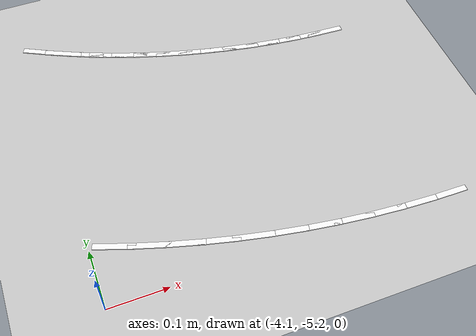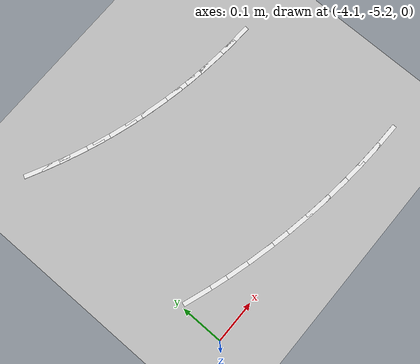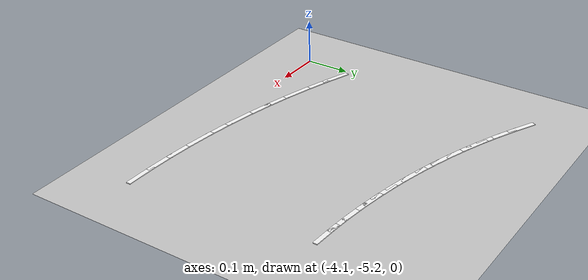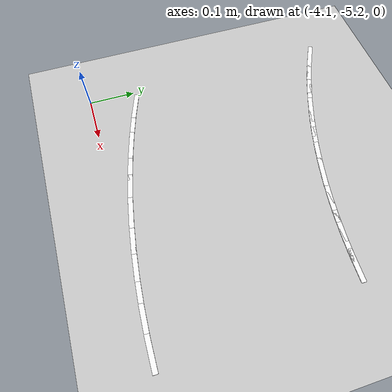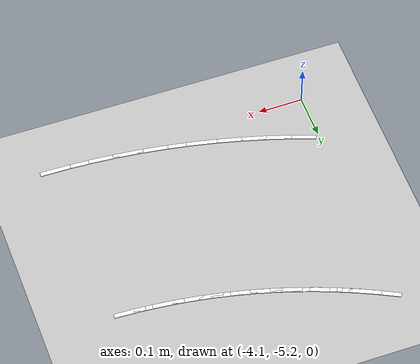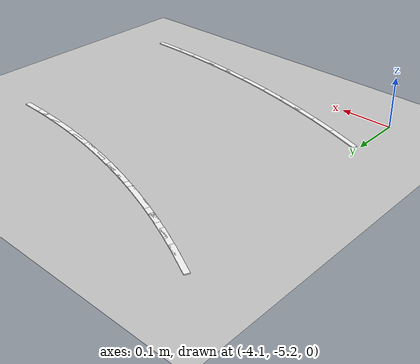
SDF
<sdf version="1.7">
 <world name="default">
  <model name="ground_plane">
   <static>1</static>
   <link name="link">
    <collision name="collision">
     <geometry><plane><normal>0 0 1</normal><size>100 100</size></plane></geometry>
     <surface>
      <contact><collide_bitmask>65535</collide_bitmask></contact>
      <friction><ode><mu>100</mu><mu2>50</mu2></ode></friction>
     </surface>
    </collision>
    <visual name="visual">
     <cast_shadows>0</cast_shadows>
     <geometry><plane><normal>0 0 1</normal><size>100 100</size></plane></geometry>
     <material>
      <script><uri>file://media/materials/scripts/gazebo.material</uri><name>Gazebo/Grey</name></script>
     </material>
    </visual>
   </link>
  </model>
  <model name="lane_line_left_384">
   <static>1</static>
   <link name="link">
    <pose>0 0 -0.004 0 -0 0</pose>
    <visual name="visual">
     <geometry><box><size>0.0681 0.01 0.01</size></box></geometry>
     <material><ambient>1 1 1 1</ambient><diffuse>1 1 1 1</diffuse></material>
    </visual>
    <collision name="collision"><geometry><box><size>0.0681 0.01 0.01</size></box></geometry></collision>
   </link>
   <pose>-4.08266 -4.6619 0 0 0 -0.464827</pose>
  </model>
  <model name="lane_line_left_385">
   <static>1</static>
   <link name="link">
    <pose>0 0 -0.004 0 -0 0</pose>
    <visual name="visual">
     <geometry><box><size>0.0681 0.01 0.01</size></box></geometry>
     <material><ambient>1 1 1 1</ambient><diffuse>1 1 1 1</diffuse></material>
    </visual>
    <collision name="collision"><geometry><box><size>0.0681 0.01 0.01</size></box></geometry></collision>
   </link>
   <pose>-4.04512 -4.67997 0 0 0 -0.43277</pose>
  </model>
  <model name="lane_line_left_386">
   <static>1</static>
   <link name="link">
    <pose>0 0 -0.004 0 -0 0</pose>
    <visual name="visual">
     <geometry><box><size>0.0681 0.01 0.01</size></box></geometry>
     <material><ambient>1 1 1 1</ambient><diffuse>1 1 1 1</diffuse></material>
    </visual>
    <collision name="collision"><geometry><box><size>0.0681 0.01 0.01</size></box></geometry></collision>
   </link>
   <pose>-4.00702 -4.69684 0 0 0 -0.400713</pose>
  </model>
  <model name="lane_line_left_387">
   <static>1</static>
   <link name="link">
    <pose>0 0 -0.004 0 -0 0</pose>
    <visual name="visual">
     <geometry><box><size>0.0681 0.01 0.01</size></box></geometry>
     <material><ambient>1 1 1 1</ambient><diffuse>1 1 1 1</diffuse></material>
    </visual>
    <collision name="collision"><geometry><box><size>0.0681 0.01 0.01</size></box></geometry></collision>
   </link>
   <pose>-3.9684 -4.71248 0 0 0 -0.368656</pose>
  </model>
  <model name="lane_line_left_388">
   <static>1</static>
   <link name="link">
    <pose>0 0 -0.004 0 -0 0</pose>
    <visual name="visual">
     <geometry><box><size>0.0681 0.01 0.01</size></box></geometry>
     <material><ambient>1 1 1 1</ambient><diffuse>1 1 1 1</diffuse></material>
    </visual>
    <collision name="collision"><geometry><box><size>0.0681 0.01 0.01</size></box></geometry></collision>
   </link>
   <pose>-3.9293 -4.72687 0 0 0 -0.336599</pose>
  </model>
  <model name="lane_line_right_388">
   <static>1</static>
   <link name="link">
    <pose>0 0 -0.004 0 -0 0</pose>
    <visual name="visual">
     <geometry><box><size>0.0681 0.01 0.01</size></box></geometry>
     <material><ambient>1 1 1 1</ambient><diffuse>1 1 1 1</diffuse></material>
    </visual>
    <collision name="collision"><geometry><box><size>0.0681 0.01 0.01</size></box></geometry></collision>
   </link>
   <pose>-4.06141 -5.10442 0 0 0 -0.336599</pose>
  </model>
  <model name="lane_line_left_389">
   <static>1</static>
   <link name="link">
    <pose>0 0 -0.004 0 -0 0</pose>
    <visual name="visual">
     <geometry><box><size>0.0681 0.01 0.01</size></box></geometry>
     <material><ambient>1 1 1 1</ambient><diffuse>1 1 1 1</diffuse></material>
    </visual>
    <collision name="collision"><geometry><box><size>0.0681 0.01 0.01</size></box></geometry></collision>
   </link>
   <pose>-3.88976 -4.74 0 0 0 -0.304542</pose>
  </model>
  <model name="lane_line_right_389">
   <static>1</static>
   <link name="link">
    <pose>0 0 -0.004 0 -0 0</pose>
    <visual name="visual">
     <geometry><box><size>0.0681 0.01 0.01</size></box></geometry>
     <material><ambient>1 1 1 1</ambient><diffuse>1 1 1 1</diffuse></material>
    </visual>
    <collision name="collision"><geometry><box><size>0.0681 0.01 0.01</size></box></geometry></collision>
   </link>
   <pose>-4.0097 -5.12159 0 0 0 -0.304542</pose>
  </model>
  <model name="lane_line_left_390">
   <static>1</static>
   <link name="link">
    <pose>0 0 -0.004 0 -0 0</pose>
    <visual name="visual">
     <geometry><box><size>0.0681 0.01 0.01</size></box></geometry>
     <material><ambient>1 1 1 1</ambient><diffuse>1 1 1 1</diffuse></material>
    </visual>
    <collision name="collision"><geometry><box><size>0.0681 0.01 0.01</size></box></geometry></collision>
   </link>
   <pose>-3.84981 -4.75185 0 0 0 -0.272485</pose>
  </model>
  <model name="lane_line_right_390">
   <static>1</static>
   <link name="link">
    <pose>0 0 -0.004 0 -0 0</pose>
    <visual name="visual">
     <geometry><box><size>0.0681 0.01 0.01</size></box></geometry>
     <material><ambient>1 1 1 1</ambient><diffuse>1 1 1 1</diffuse></material>
    </visual>
    <collision name="collision"><geometry><box><size>0.0681 0.01 0.01</size></box></geometry></collision>
   </link>
   <pose>-3.95746 -5.13709 0 0 0 -0.272485</pose>
  </model>
  <model name="lane_line_left_391">
   <static>1</static>
   <link name="link">
    <pose>0 0 -0.004 0 -0 0</pose>
    <visual name="visual">
     <geometry><box><size>0.0681 0.01 0.01</size></box></geometry>
     <material><ambient>1 1 1 1</ambient><diffuse>1 1 1 1</diffuse></material>
    </visual>
    <collision name="collision"><geometry><box><size>0.0681 0.01 0.01</size></box></geometry></collision>
   </link>
   <pose>-3.80951 -4.76242 0 0 0 -0.240428</pose>
  </model>
  <model name="lane_line_right_391">
   <static>1</static>
   <link name="link">
    <pose>0 0 -0.004 0 -0 0</pose>
    <visual name="visual">
     <geometry><box><size>0.0681 0.01 0.01</size></box></geometry>
     <material><ambient>1 1 1 1</ambient><diffuse>1 1 1 1</diffuse></material>
    </visual>
    <collision name="collision"><geometry><box><size>0.0681 0.01 0.01</size></box></geometry></collision>
   </link>
   <pose>-3.90476 -5.15091 0 0 0 -0.240428</pose>
  </model>
  <model name="lane_line_left_392">
   <static>1</static>
   <link name="link">
    <pose>0 0 -0.004 0 -0 0</pose>
    <visual name="visual">
     <geometry><box><size>0.0681 0.01 0.01</size></box></geometry>
     <material><ambient>1 1 1 1</ambient><diffuse>1 1 1 1</diffuse></material>
    </visual>
    <collision name="collision"><geometry><box><size>0.0681 0.01 0.01</size></box></geometry></collision>
   </link>
   <pose>-3.76889 -4.77169 0 0 0 -0.208371</pose>
  </model>
  <model name="lane_line_right_392">
   <static>1</static>
   <link name="link">
    <pose>0 0 -0.004 0 -0 0</pose>
    <visual name="visual">
     <geometry><box><size>0.0681 0.01 0.01</size></box></geometry>
     <material><ambient>1 1 1 1</ambient><diffuse>1 1 1 1</diffuse></material>
    </visual>
    <collision name="collision"><geometry><box><size>0.0681 0.01 0.01</size></box></geometry></collision>
   </link>
   <pose>-3.85163 -5.16304 0 0 0 -0.208371</pose>
  </model>
  <model name="lane_line_left_393">
   <static>1</static>
   <link name="link">
    <pose>0 0 -0.004 0 -0 0</pose>
    <visual name="visual">
     <geometry><box><size>0.0681 0.01 0.01</size></box></geometry>
     <material><ambient>1 1 1 1</ambient><diffuse>1 1 1 1</diffuse></material>
    </visual>
    <collision name="collision"><geometry><box><size>0.0681 0.01 0.01</size></box></geometry></collision>
   </link>
   <pose>-3.72799 -4.77966 0 0 0 -0.176314</pose>
  </model>
  <model name="lane_line_right_393">
   <static>1</static>
   <link name="link">
    <pose>0 0 -0.004 0 -0 0</pose>
    <visual name="visual">
     <geometry><box><size>0.0681 0.01 0.01</size></box></geometry>
     <material><ambient>1 1 1 1</ambient><diffuse>1 1 1 1</diffuse></material>
    </visual>
    <collision name="collision"><geometry><box><size>0.0681 0.01 0.01</size></box></geometry></collision>
   </link>
   <pose>-3.79815 -5.17346 0 0 0 -0.176314</pose>
  </model>
  <model name="lane_line_left_394">
   <static>1</static>
   <link name="link">
    <pose>0 0 -0.004 0 -0 0</pose>
    <visual name="visual">
     <geometry><box><size>0.0681 0.01 0.01</size></box></geometry>
     <material><ambient>1 1 1 1</ambient><diffuse>1 1 1 1</diffuse></material>
    </visual>
    <collision name="collision"><geometry><box><size>0.0681 0.01 0.01</size></box></geometry></collision>
   </link>
   <pose>-3.68686 -4.78631 0 0 0 -0.144257</pose>
  </model>
  <model name="lane_line_right_394">
   <static>1</static>
   <link name="link">
    <pose>0 0 -0.004 0 -0 0</pose>
    <visual name="visual">
     <geometry><box><size>0.0681 0.01 0.01</size></box></geometry>
     <material><ambient>1 1 1 1</ambient><diffuse>1 1 1 1</diffuse></material>
    </visual>
    <collision name="collision"><geometry><box><size>0.0681 0.01 0.01</size></box></geometry></collision>
   </link>
   <pose>-3.74436 -5.18215 0 0 0 -0.144257</pose>
  </model>
  <model name="lane_line_left_395">
   <static>1</static>
   <link name="link">
    <pose>0 0 -0.004 0 -0 0</pose>
    <visual name="visual">
     <geometry><box><size>0.0681 0.01 0.01</size></box></geometry>
     <material><ambient>1 1 1 1</ambient><diffuse>1 1 1 1</diffuse></material>
    </visual>
    <collision name="collision"><geometry><box><size>0.0681 0.01 0.01</size></box></geometry></collision>
   </link>
   <pose>-3.64553 -4.79163 0 0 0 -0.1122</pose>
  </model>
  <model name="lane_line_right_395">
   <static>1</static>
   <link name="link">
    <pose>0 0 -0.004 0 -0 0</pose>
    <visual name="visual">
     <geometry><box><size>0.0681 0.01 0.01</size></box></geometry>
     <material><ambient>1 1 1 1</ambient><diffuse>1 1 1 1</diffuse></material>
    </visual>
    <collision name="collision"><geometry><box><size>0.0681 0.01 0.01</size></box></geometry></collision>
   </link>
   <pose>-3.69032 -5.18912 0 0 0 -0.1122</pose>
  </model>
  <model name="lane_line_left_396">
   <static>1</static>
   <link name="link">
    <pose>0 0 -0.004 0 -0 0</pose>
    <visual name="visual">
     <geometry><box><size>0.0681 0.01 0.01</size></box></geometry>
     <material><ambient>1 1 1 1</ambient><diffuse>1 1 1 1</diffuse></material>
    </visual>
    <collision name="collision"><geometry><box><size>0.0681 0.01 0.01</size></box></geometry></collision>
   </link>
   <pose>-3.60406 -4.79564 0 0 0 -0.080143</pose>
  </model>
  <model name="lane_line_right_396">
   <static>1</static>
   <link name="link">
    <pose>0 0 -0.004 0 -0 0</pose>
    <visual name="visual">
     <geometry><box><size>0.0681 0.01 0.01</size></box></geometry>
     <material><ambient>1 1 1 1</ambient><diffuse>1 1 1 1</diffuse></material>
    </visual>
    <collision name="collision"><geometry><box><size>0.0681 0.01 0.01</size></box></geometry></collision>
   </link>
   <pose>-3.63608 -5.19435 0 0 0 -0.080143</pose>
  </model>
  <model name="lane_line_left_397">
   <static>1</static>
   <link name="link">
    <pose>0 0 -0.004 0 -0 0</pose>
    <visual name="visual">
     <geometry><box><size>0.0681 0.01 0.01</size></box></geometry>
     <material><ambient>1 1 1 1</ambient><diffuse>1 1 1 1</diffuse></material>
    </visual>
    <collision name="collision"><geometry><box><size>0.0681 0.01 0.01</size></box></geometry></collision>
   </link>
   <pose>-3.56248 -4.7983 0 0 0 -0.048086</pose>
  </model>
  <model name="lane_line_right_397">
   <static>1</static>
   <link name="link">
    <pose>0 0 -0.004 0 -0 0</pose>
    <visual name="visual">
     <geometry><box><size>0.0681 0.01 0.01</size></box></geometry>
     <material><ambient>1 1 1 1</ambient><diffuse>1 1 1 1</diffuse></material>
    </visual>
    <collision name="collision"><geometry><box><size>0.0681 0.01 0.01</size></box></geometry></collision>
   </link>
   <pose>-3.5817 -5.19784 0 0 0 -0.048086</pose>
  </model>
  <model name="lane_line_right_398">
   <static>1</static>
   <link name="link">
    <pose>0 0 -0.004 0 -0 0</pose>
    <visual name="visual">
     <geometry><box><size>0.0681 0.01 0.01</size></box></geometry>
     <material><ambient>1 1 1 1</ambient><diffuse>1 1 1 1</diffuse></material>
    </visual>
    <collision name="collision"><geometry><box><size>0.0681 0.01 0.01</size></box></geometry></collision>
   </link>
   <pose>-3.52724 -5.19959 0 0 0 -0.016029</pose>
  </model>
 </world>
</sdf>
